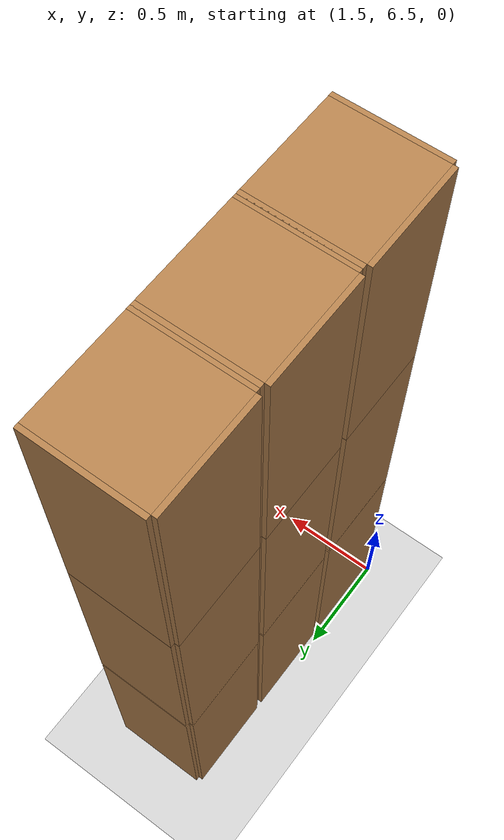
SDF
<sdf version="1.6">
 <world name="default">
  <model name="ground_plane">
   <static>1</static>
   <link name="link">
    <collision name="collision">
     <geometry><plane><normal>0 0 1</normal><size>100 100</size></plane></geometry>
     <surface>
      <contact><collide_bitmask>65535</collide_bitmask></contact>
      <friction><ode><mu>100</mu><mu2>50</mu2></ode></friction>
     </surface>
    </collision>
    <visual name="visual">
     <cast_shadows>0</cast_shadows>
     <geometry><plane><normal>0 0 1</normal><size>100 100</size></plane></geometry>
     <material>
      <script><uri>file://media/materials/scripts/gazebo.material</uri><name>Gazebo/Grey</name></script>
     </material>
    </visual>
   </link>
  </model>
  <model name="Locker18_clone_4_clone_2_clone_1_clone_clone_clone_2">
   <model name="Locker18">
    <model name="Locker3">
     <model name="cabinet">
      <static>1</static>
      <link name="cabinet_bottom_plate">
       <inertial>
        <pose>0 0 -1 0 -0 0</pose>
        <inertia><ixx>2.05</ixx><ixy>0</ixy><ixz>0</ixz><iyy>2.05</iyy><iyz>0</iyz><izz>2.05</izz></inertia>
        <mass>25</mass>
       </inertial>
       <collision name="cabinet_bottom_plate_geom">
        <pose>0 0 0.01 0 -0 0</pose>
        <geometry><box><size>0.45 0.45 0.02</size></box></geometry>
       </collision>
       <visual name="cabinet_bottom_plate_geom_visual">
        <pose>0 0 0.01 0 -0 0</pose>
        <geometry><box><size>0.45 0.45 0.02</size></box></geometry>
        <material>
         <script><uri>file://media/materials/scripts/gazebo.material</uri><name>Gazebo/Wood</name></script>
        </material>
       </visual>
       <collision name="cabinet_bottom_plate_geom_cabinet_back_plate">
        <pose>0.235 0 0.51 0 -0 0</pose>
        <geometry><box><size>0.02 0.45 1.02</size></box></geometry>
       </collision>
       <visual name="cabinet_bottom_plate_geom_cabinet_back_plate_visual">
        <pose>0.235 0 0.51 0 -0 0</pose>
        <geometry><box><size>0.02 0.45 1.02</size></box></geometry>
        <material>
         <script><uri>file://media/materials/scripts/gazebo.material</uri><name>Gazebo/Wood</name></script>
        </material>
       </visual>
       <collision name="cabinet_bottom_plate_geom_cabinet_left_plate">
        <pose>0 0.235 0.51 0 -0 0</pose>
        <geometry><box><size>0.45 0.02 1.02</size></box></geometry>
       </collision>
       <visual name="cabinet_bottom_plate_geom_cabinet_left_plate_visual">
        <pose>0 0.235 0.51 0 -0 0</pose>
        <geometry><box><size>0.45 0.02 1.02</size></box></geometry>
        <material>
         <script><uri>file://media/materials/scripts/gazebo.material</uri><name>Gazebo/Wood</name></script>
        </material>
       </visual>
       <collision name="cabinet_bottom_plate_geom_cabinet_middle_plate">
        <pose>0 0 0.51 0 -0 0</pose>
        <geometry><box><size>0.45 0.45 0.02</size></box></geometry>
       </collision>
       <visual name="cabinet_bottom_plate_geom_cabinet_middle_plate_visual">
        <pose>0 0 0.51 0 -0 0</pose>
        <geometry><box><size>0.45 0.45 0.02</size></box></geometry>
        <material>
         <script><uri>file://media/materials/scripts/gazebo.material</uri><name>Gazebo/Wood</name></script>
        </material>
       </visual>
       <collision name="cabinet_bottom_plate_geom_cabinet_right_plate">
        <pose>0 -0.235 0.51 0 -0 0</pose>
        <geometry><box><size>0.45 0.02 1.02</size></box></geometry>
       </collision>
       <visual name="cabinet_bottom_plate_geom_cabinet_right_plate_visual">
        <pose>0 -0.235 0.51 0 -0 0</pose>
        <geometry><box><size>0.45 0.02 1.02</size></box></geometry>
        <material>
         <script><uri>file://media/materials/scripts/gazebo.material</uri><name>Gazebo/Wood</name></script>
        </material>
       </visual>
       <collision name="cabinet_bottom_plate_geom_cabinet_top_plate">
        <pose>0 0 1.01 0 -0 0</pose>
        <geometry><box><size>0.45 0.45 0.02</size></box></geometry>
       </collision>
       <visual name="cabinet_bottom_plate_geom_cabinet_top_plate_visual">
        <pose>0 0 1.01 0 -0 0</pose>
        <geometry><box><size>0.45 0.45 0.02</size></box></geometry>
        <material>
         <script><uri>file://media/materials/scripts/gazebo.material</uri><name>Gazebo/Wood</name></script>
        </material>
       </visual>
      </link>
      <pose>-0.676968 1.45758 0 0 -0 0</pose>
     </model>
     <model name="cabinet_clone">
      <static>1</static>
      <link name="cabinet_bottom_plate">
       <inertial>
        <pose>0 0 -1 0 -0 0</pose>
        <inertia><ixx>2.05</ixx><ixy>0</ixy><ixz>0</ixz><iyy>2.05</iyy><iyz>0</iyz><izz>2.05</izz></inertia>
        <mass>25</mass>
       </inertial>
       <collision name="cabinet_bottom_plate_geom">
        <pose>0 0 0.01 0 -0 0</pose>
        <geometry><box><size>0.45 0.45 0.02</size></box></geometry>
       </collision>
       <visual name="cabinet_bottom_plate_geom_visual">
        <pose>0 0 0.01 0 -0 0</pose>
        <geometry><box><size>0.45 0.45 0.02</size></box></geometry>
        <material>
         <script><uri>file://media/materials/scripts/gazebo.material</uri><name>Gazebo/Wood</name></script>
        </material>
       </visual>
       <collision name="cabinet_bottom_plate_geom_cabinet_back_plate">
        <pose>0.235 0 0.51 0 -0 0</pose>
        <geometry><box><size>0.02 0.45 1.02</size></box></geometry>
       </collision>
       <visual name="cabinet_bottom_plate_geom_cabinet_back_plate_visual">
        <pose>0.235 0 0.51 0 -0 0</pose>
        <geometry><box><size>0.02 0.45 1.02</size></box></geometry>
        <material>
         <script><uri>file://media/materials/scripts/gazebo.material</uri><name>Gazebo/Wood</name></script>
        </material>
       </visual>
       <collision name="cabinet_bottom_plate_geom_cabinet_left_plate">
        <pose>0 0.235 0.51 0 -0 0</pose>
        <geometry><box><size>0.45 0.02 1.02</size></box></geometry>
       </collision>
       <visual name="cabinet_bottom_plate_geom_cabinet_left_plate_visual">
        <pose>0 0.235 0.51 0 -0 0</pose>
        <geometry><box><size>0.45 0.02 1.02</size></box></geometry>
        <material>
         <script><uri>file://media/materials/scripts/gazebo.material</uri><name>Gazebo/Wood</name></script>
        </material>
       </visual>
       <collision name="cabinet_bottom_plate_geom_cabinet_middle_plate">
        <pose>0 0 0.51 0 -0 0</pose>
        <geometry><box><size>0.45 0.45 0.02</size></box></geometry>
       </collision>
       <visual name="cabinet_bottom_plate_geom_cabinet_middle_plate_visual">
        <pose>0 0 0.51 0 -0 0</pose>
        <geometry><box><size>0.45 0.45 0.02</size></box></geometry>
        <material>
         <script><uri>file://media/materials/scripts/gazebo.material</uri><name>Gazebo/Wood</name></script>
        </material>
       </visual>
       <collision name="cabinet_bottom_plate_geom_cabinet_right_plate">
        <pose>0 -0.235 0.51 0 -0 0</pose>
        <geometry><box><size>0.45 0.02 1.02</size></box></geometry>
       </collision>
       <visual name="cabinet_bottom_plate_geom_cabinet_right_plate_visual">
        <pose>0 -0.235 0.51 0 -0 0</pose>
        <geometry><box><size>0.45 0.02 1.02</size></box></geometry>
        <material>
         <script><uri>file://media/materials/scripts/gazebo.material</uri><name>Gazebo/Wood</name></script>
        </material>
       </visual>
       <collision name="cabinet_bottom_plate_geom_cabinet_top_plate">
        <pose>0 0 1.01 0 -0 0</pose>
        <geometry><box><size>0.45 0.45 0.02</size></box></geometry>
       </collision>
       <visual name="cabinet_bottom_plate_geom_cabinet_top_plate_visual">
        <pose>0 0 1.01 0 -0 0</pose>
        <geometry><box><size>0.45 0.45 0.02</size></box></geometry>
        <material>
         <script><uri>file://media/materials/scripts/gazebo.material</uri><name>Gazebo/Wood</name></script>
        </material>
       </visual>
      </link>
      <pose>-0.676968 0.970971 0 0 -0 0</pose>
     </model>
     <model name="cabinet_clone_0">
      <static>1</static>
      <link name="cabinet_bottom_plate">
       <inertial>
        <pose>0 0 -1 0 -0 0</pose>
        <inertia><ixx>2.05</ixx><ixy>0</ixy><ixz>0</ixz><iyy>2.05</iyy><iyz>0</iyz><izz>2.05</izz></inertia>
        <mass>25</mass>
       </inertial>
       <collision name="cabinet_bottom_plate_geom">
        <pose>0 0 0.01 0 -0 0</pose>
        <geometry><box><size>0.45 0.45 0.02</size></box></geometry>
       </collision>
       <visual name="cabinet_bottom_plate_geom_visual">
        <pose>0 0 0.01 0 -0 0</pose>
        <geometry><box><size>0.45 0.45 0.02</size></box></geometry>
        <material>
         <script><uri>file://media/materials/scripts/gazebo.material</uri><name>Gazebo/Wood</name></script>
        </material>
       </visual>
       <collision name="cabinet_bottom_plate_geom_cabinet_back_plate">
        <pose>0.235 0 0.51 0 -0 0</pose>
        <geometry><box><size>0.02 0.45 1.02</size></box></geometry>
       </collision>
       <visual name="cabinet_bottom_plate_geom_cabinet_back_plate_visual">
        <pose>0.235 0 0.51 0 -0 0</pose>
        <geometry><box><size>0.02 0.45 1.02</size></box></geometry>
        <material>
         <script><uri>file://media/materials/scripts/gazebo.material</uri><name>Gazebo/Wood</name></script>
        </material>
       </visual>
       <collision name="cabinet_bottom_plate_geom_cabinet_left_plate">
        <pose>0 0.235 0.51 0 -0 0</pose>
        <geometry><box><size>0.45 0.02 1.02</size></box></geometry>
       </collision>
       <visual name="cabinet_bottom_plate_geom_cabinet_left_plate_visual">
        <pose>0 0.235 0.51 0 -0 0</pose>
        <geometry><box><size>0.45 0.02 1.02</size></box></geometry>
        <material>
         <script><uri>file://media/materials/scripts/gazebo.material</uri><name>Gazebo/Wood</name></script>
        </material>
       </visual>
       <collision name="cabinet_bottom_plate_geom_cabinet_middle_plate">
        <pose>0 0 0.51 0 -0 0</pose>
        <geometry><box><size>0.45 0.45 0.02</size></box></geometry>
       </collision>
       <visual name="cabinet_bottom_plate_geom_cabinet_middle_plate_visual">
        <pose>0 0 0.51 0 -0 0</pose>
        <geometry><box><size>0.45 0.45 0.02</size></box></geometry>
        <material>
         <script><uri>file://media/materials/scripts/gazebo.material</uri><name>Gazebo/Wood</name></script>
        </material>
       </visual>
       <collision name="cabinet_bottom_plate_geom_cabinet_right_plate">
        <pose>0 -0.235 0.51 0 -0 0</pose>
        <geometry><box><size>0.45 0.02 1.02</size></box></geometry>
       </collision>
       <visual name="cabinet_bottom_plate_geom_cabinet_right_plate_visual">
        <pose>0 -0.235 0.51 0 -0 0</pose>
        <geometry><box><size>0.45 0.02 1.02</size></box></geometry>
        <material>
         <script><uri>file://media/materials/scripts/gazebo.material</uri><name>Gazebo/Wood</name></script>
        </material>
       </visual>
       <collision name="cabinet_bottom_plate_geom_cabinet_top_plate">
        <pose>0 0 1.01 0 -0 0</pose>
        <geometry><box><size>0.45 0.45 0.02</size></box></geometry>
       </collision>
       <visual name="cabinet_bottom_plate_geom_cabinet_top_plate_visual">
        <pose>0 0 1.01 0 -0 0</pose>
        <geometry><box><size>0.45 0.45 0.02</size></box></geometry>
        <material>
         <script><uri>file://media/materials/scripts/gazebo.material</uri><name>Gazebo/Wood</name></script>
        </material>
       </visual>
      </link>
      <pose>-0.676968 0.48391 0 0 -0 0</pose>
     </model>
     <static>0</static>
     <pose>0 3e-06 -1.02763 0 -0 0</pose>
    </model>
    <model name="Locker3_clone">
     <model name="cabinet">
      <static>1</static>
      <link name="cabinet_bottom_plate">
       <inertial>
        <pose>0 0 -1 0 -0 0</pose>
        <inertia><ixx>2.05</ixx><ixy>0</ixy><ixz>0</ixz><iyy>2.05</iyy><iyz>0</iyz><izz>2.05</izz></inertia>
        <mass>25</mass>
       </inertial>
       <collision name="cabinet_bottom_plate_geom">
        <pose>0 0 0.01 0 -0 0</pose>
        <geometry><box><size>0.45 0.45 0.02</size></box></geometry>
       </collision>
       <visual name="cabinet_bottom_plate_geom_visual">
        <pose>0 0 0.01 0 -0 0</pose>
        <geometry><box><size>0.45 0.45 0.02</size></box></geometry>
        <material>
         <script><uri>file://media/materials/scripts/gazebo.material</uri><name>Gazebo/Wood</name></script>
        </material>
       </visual>
       <collision name="cabinet_bottom_plate_geom_cabinet_back_plate">
        <pose>0.235 0 0.51 0 -0 0</pose>
        <geometry><box><size>0.02 0.45 1.02</size></box></geometry>
       </collision>
       <visual name="cabinet_bottom_plate_geom_cabinet_back_plate_visual">
        <pose>0.235 0 0.51 0 -0 0</pose>
        <geometry><box><size>0.02 0.45 1.02</size></box></geometry>
        <material>
         <script><uri>file://media/materials/scripts/gazebo.material</uri><name>Gazebo/Wood</name></script>
        </material>
       </visual>
       <collision name="cabinet_bottom_plate_geom_cabinet_left_plate">
        <pose>0 0.235 0.51 0 -0 0</pose>
        <geometry><box><size>0.45 0.02 1.02</size></box></geometry>
       </collision>
       <visual name="cabinet_bottom_plate_geom_cabinet_left_plate_visual">
        <pose>0 0.235 0.51 0 -0 0</pose>
        <geometry><box><size>0.45 0.02 1.02</size></box></geometry>
        <material>
         <script><uri>file://media/materials/scripts/gazebo.material</uri><name>Gazebo/Wood</name></script>
        </material>
       </visual>
       <collision name="cabinet_bottom_plate_geom_cabinet_middle_plate">
        <pose>0 0 0.51 0 -0 0</pose>
        <geometry><box><size>0.45 0.45 0.02</size></box></geometry>
       </collision>
       <visual name="cabinet_bottom_plate_geom_cabinet_middle_plate_visual">
        <pose>0 0 0.51 0 -0 0</pose>
        <geometry><box><size>0.45 0.45 0.02</size></box></geometry>
        <material>
         <script><uri>file://media/materials/scripts/gazebo.material</uri><name>Gazebo/Wood</name></script>
        </material>
       </visual>
       <collision name="cabinet_bottom_plate_geom_cabinet_right_plate">
        <pose>0 -0.235 0.51 0 -0 0</pose>
        <geometry><box><size>0.45 0.02 1.02</size></box></geometry>
       </collision>
       <visual name="cabinet_bottom_plate_geom_cabinet_right_plate_visual">
        <pose>0 -0.235 0.51 0 -0 0</pose>
        <geometry><box><size>0.45 0.02 1.02</size></box></geometry>
        <material>
         <script><uri>file://media/materials/scripts/gazebo.material</uri><name>Gazebo/Wood</name></script>
        </material>
       </visual>
       <collision name="cabinet_bottom_plate_geom_cabinet_top_plate">
        <pose>0 0 1.01 0 -0 0</pose>
        <geometry><box><size>0.45 0.45 0.02</size></box></geometry>
       </collision>
       <visual name="cabinet_bottom_plate_geom_cabinet_top_plate_visual">
        <pose>0 0 1.01 0 -0 0</pose>
        <geometry><box><size>0.45 0.45 0.02</size></box></geometry>
        <material>
         <script><uri>file://media/materials/scripts/gazebo.material</uri><name>Gazebo/Wood</name></script>
        </material>
       </visual>
      </link>
      <pose>-0.676968 1.45758 0 0 -0 0</pose>
     </model>
     <model name="cabinet_clone">
      <static>1</static>
      <link name="cabinet_bottom_plate">
       <inertial>
        <pose>0 0 -1 0 -0 0</pose>
        <inertia><ixx>2.05</ixx><ixy>0</ixy><ixz>0</ixz><iyy>2.05</iyy><iyz>0</iyz><izz>2.05</izz></inertia>
        <mass>25</mass>
       </inertial>
       <collision name="cabinet_bottom_plate_geom">
        <pose>0 0 0.01 0 -0 0</pose>
        <geometry><box><size>0.45 0.45 0.02</size></box></geometry>
       </collision>
       <visual name="cabinet_bottom_plate_geom_visual">
        <pose>0 0 0.01 0 -0 0</pose>
        <geometry><box><size>0.45 0.45 0.02</size></box></geometry>
        <material>
         <script><uri>file://media/materials/scripts/gazebo.material</uri><name>Gazebo/Wood</name></script>
        </material>
       </visual>
       <collision name="cabinet_bottom_plate_geom_cabinet_back_plate">
        <pose>0.235 0 0.51 0 -0 0</pose>
        <geometry><box><size>0.02 0.45 1.02</size></box></geometry>
       </collision>
       <visual name="cabinet_bottom_plate_geom_cabinet_back_plate_visual">
        <pose>0.235 0 0.51 0 -0 0</pose>
        <geometry><box><size>0.02 0.45 1.02</size></box></geometry>
        <material>
         <script><uri>file://media/materials/scripts/gazebo.material</uri><name>Gazebo/Wood</name></script>
        </material>
       </visual>
       <collision name="cabinet_bottom_plate_geom_cabinet_left_plate">
        <pose>0 0.235 0.51 0 -0 0</pose>
        <geometry><box><size>0.45 0.02 1.02</size></box></geometry>
       </collision>
       <visual name="cabinet_bottom_plate_geom_cabinet_left_plate_visual">
        <pose>0 0.235 0.51 0 -0 0</pose>
        <geometry><box><size>0.45 0.02 1.02</size></box></geometry>
        <material>
         <script><uri>file://media/materials/scripts/gazebo.material</uri><name>Gazebo/Wood</name></script>
        </material>
       </visual>
       <collision name="cabinet_bottom_plate_geom_cabinet_middle_plate">
        <pose>0 0 0.51 0 -0 0</pose>
        <geometry><box><size>0.45 0.45 0.02</size></box></geometry>
       </collision>
       <visual name="cabinet_bottom_plate_geom_cabinet_middle_plate_visual">
        <pose>0 0 0.51 0 -0 0</pose>
        <geometry><box><size>0.45 0.45 0.02</size></box></geometry>
        <material>
         <script><uri>file://media/materials/scripts/gazebo.material</uri><name>Gazebo/Wood</name></script>
        </material>
       </visual>
       <collision name="cabinet_bottom_plate_geom_cabinet_right_plate">
        <pose>0 -0.235 0.51 0 -0 0</pose>
        <geometry><box><size>0.45 0.02 1.02</size></box></geometry>
       </collision>
       <visual name="cabinet_bottom_plate_geom_cabinet_right_plate_visual">
        <pose>0 -0.235 0.51 0 -0 0</pose>
        <geometry><box><size>0.45 0.02 1.02</size></box></geometry>
        <material>
         <script><uri>file://media/materials/scripts/gazebo.material</uri><name>Gazebo/Wood</name></script>
        </material>
       </visual>
       <collision name="cabinet_bottom_plate_geom_cabinet_top_plate">
        <pose>0 0 1.01 0 -0 0</pose>
        <geometry><box><size>0.45 0.45 0.02</size></box></geometry>
       </collision>
       <visual name="cabinet_bottom_plate_geom_cabinet_top_plate_visual">
        <pose>0 0 1.01 0 -0 0</pose>
        <geometry><box><size>0.45 0.45 0.02</size></box></geometry>
        <material>
         <script><uri>file://media/materials/scripts/gazebo.material</uri><name>Gazebo/Wood</name></script>
        </material>
       </visual>
      </link>
      <pose>-0.676968 0.970971 0 0 -0 0</pose>
     </model>
     <model name="cabinet_clone_0">
      <static>1</static>
      <link name="cabinet_bottom_plate">
       <inertial>
        <pose>0 0 -1 0 -0 0</pose>
        <inertia><ixx>2.05</ixx><ixy>0</ixy><ixz>0</ixz><iyy>2.05</iyy><iyz>0</iyz><izz>2.05</izz></inertia>
        <mass>25</mass>
       </inertial>
       <collision name="cabinet_bottom_plate_geom">
        <pose>0 0 0.01 0 -0 0</pose>
        <geometry><box><size>0.45 0.45 0.02</size></box></geometry>
       </collision>
       <visual name="cabinet_bottom_plate_geom_visual">
        <pose>0 0 0.01 0 -0 0</pose>
        <geometry><box><size>0.45 0.45 0.02</size></box></geometry>
        <material>
         <script><uri>file://media/materials/scripts/gazebo.material</uri><name>Gazebo/Wood</name></script>
        </material>
       </visual>
       <collision name="cabinet_bottom_plate_geom_cabinet_back_plate">
        <pose>0.235 0 0.51 0 -0 0</pose>
        <geometry><box><size>0.02 0.45 1.02</size></box></geometry>
       </collision>
       <visual name="cabinet_bottom_plate_geom_cabinet_back_plate_visual">
        <pose>0.235 0 0.51 0 -0 0</pose>
        <geometry><box><size>0.02 0.45 1.02</size></box></geometry>
        <material>
         <script><uri>file://media/materials/scripts/gazebo.material</uri><name>Gazebo/Wood</name></script>
        </material>
       </visual>
       <collision name="cabinet_bottom_plate_geom_cabinet_left_plate">
        <pose>0 0.235 0.51 0 -0 0</pose>
        <geometry><box><size>0.45 0.02 1.02</size></box></geometry>
       </collision>
       <visual name="cabinet_bottom_plate_geom_cabinet_left_plate_visual">
        <pose>0 0.235 0.51 0 -0 0</pose>
        <geometry><box><size>0.45 0.02 1.02</size></box></geometry>
        <material>
         <script><uri>file://media/materials/scripts/gazebo.material</uri><name>Gazebo/Wood</name></script>
        </material>
       </visual>
       <collision name="cabinet_bottom_plate_geom_cabinet_middle_plate">
        <pose>0 0 0.51 0 -0 0</pose>
        <geometry><box><size>0.45 0.45 0.02</size></box></geometry>
       </collision>
       <visual name="cabinet_bottom_plate_geom_cabinet_middle_plate_visual">
        <pose>0 0 0.51 0 -0 0</pose>
        <geometry><box><size>0.45 0.45 0.02</size></box></geometry>
        <material>
         <script><uri>file://media/materials/scripts/gazebo.material</uri><name>Gazebo/Wood</name></script>
        </material>
       </visual>
       <collision name="cabinet_bottom_plate_geom_cabinet_right_plate">
        <pose>0 -0.235 0.51 0 -0 0</pose>
        <geometry><box><size>0.45 0.02 1.02</size></box></geometry>
       </collision>
       <visual name="cabinet_bottom_plate_geom_cabinet_right_plate_visual">
        <pose>0 -0.235 0.51 0 -0 0</pose>
        <geometry><box><size>0.45 0.02 1.02</size></box></geometry>
        <material>
         <script><uri>file://media/materials/scripts/gazebo.material</uri><name>Gazebo/Wood</name></script>
        </material>
       </visual>
       <collision name="cabinet_bottom_plate_geom_cabinet_top_plate">
        <pose>0 0 1.01 0 -0 0</pose>
        <geometry><box><size>0.45 0.45 0.02</size></box></geometry>
       </collision>
       <visual name="cabinet_bottom_plate_geom_cabinet_top_plate_visual">
        <pose>0 0 1.01 0 -0 0</pose>
        <geometry><box><size>0.45 0.45 0.02</size></box></geometry>
        <material>
         <script><uri>file://media/materials/scripts/gazebo.material</uri><name>Gazebo/Wood</name></script>
        </material>
       </visual>
      </link>
      <pose>-0.676968 0.48391 0 0 -0 0</pose>
     </model>
     <static>0</static>
     <pose>0 3e-06 0.003717 0 -0 0</pose>
    </model>
    <model name="Locker3_clone_clone">
     <model name="cabinet">
      <static>1</static>
      <link name="cabinet_bottom_plate">
       <inertial>
        <pose>0 0 -1 0 -0 0</pose>
        <inertia><ixx>2.05</ixx><ixy>0</ixy><ixz>0</ixz><iyy>2.05</iyy><iyz>0</iyz><izz>2.05</izz></inertia>
        <mass>25</mass>
       </inertial>
       <collision name="cabinet_bottom_plate_geom">
        <pose>0 0 0.01 0 -0 0</pose>
        <geometry><box><size>0.45 0.45 0.02</size></box></geometry>
       </collision>
       <visual name="cabinet_bottom_plate_geom_visual">
        <pose>0 0 0.01 0 -0 0</pose>
        <geometry><box><size>0.45 0.45 0.02</size></box></geometry>
        <material>
         <script><uri>file://media/materials/scripts/gazebo.material</uri><name>Gazebo/Wood</name></script>
        </material>
       </visual>
       <collision name="cabinet_bottom_plate_geom_cabinet_back_plate">
        <pose>0.235 0 0.51 0 -0 0</pose>
        <geometry><box><size>0.02 0.45 1.02</size></box></geometry>
       </collision>
       <visual name="cabinet_bottom_plate_geom_cabinet_back_plate_visual">
        <pose>0.235 0 0.51 0 -0 0</pose>
        <geometry><box><size>0.02 0.45 1.02</size></box></geometry>
        <material>
         <script><uri>file://media/materials/scripts/gazebo.material</uri><name>Gazebo/Wood</name></script>
        </material>
       </visual>
       <collision name="cabinet_bottom_plate_geom_cabinet_left_plate">
        <pose>0 0.235 0.51 0 -0 0</pose>
        <geometry><box><size>0.45 0.02 1.02</size></box></geometry>
       </collision>
       <visual name="cabinet_bottom_plate_geom_cabinet_left_plate_visual">
        <pose>0 0.235 0.51 0 -0 0</pose>
        <geometry><box><size>0.45 0.02 1.02</size></box></geometry>
        <material>
         <script><uri>file://media/materials/scripts/gazebo.material</uri><name>Gazebo/Wood</name></script>
        </material>
       </visual>
       <collision name="cabinet_bottom_plate_geom_cabinet_middle_plate">
        <pose>0 0 0.51 0 -0 0</pose>
        <geometry><box><size>0.45 0.45 0.02</size></box></geometry>
       </collision>
       <visual name="cabinet_bottom_plate_geom_cabinet_middle_plate_visual">
        <pose>0 0 0.51 0 -0 0</pose>
        <geometry><box><size>0.45 0.45 0.02</size></box></geometry>
        <material>
         <script><uri>file://media/materials/scripts/gazebo.material</uri><name>Gazebo/Wood</name></script>
        </material>
       </visual>
       <collision name="cabinet_bottom_plate_geom_cabinet_right_plate">
        <pose>0 -0.235 0.51 0 -0 0</pose>
        <geometry><box><size>0.45 0.02 1.02</size></box></geometry>
       </collision>
       <visual name="cabinet_bottom_plate_geom_cabinet_right_plate_visual">
        <pose>0 -0.235 0.51 0 -0 0</pose>
        <geometry><box><size>0.45 0.02 1.02</size></box></geometry>
        <material>
         <script><uri>file://media/materials/scripts/gazebo.material</uri><name>Gazebo/Wood</name></script>
        </material>
       </visual>
       <collision name="cabinet_bottom_plate_geom_cabinet_top_plate">
        <pose>0 0 1.01 0 -0 0</pose>
        <geometry><box><size>0.45 0.45 0.02</size></box></geometry>
       </collision>
       <visual name="cabinet_bottom_plate_geom_cabinet_top_plate_visual">
        <pose>0 0 1.01 0 -0 0</pose>
        <geometry><box><size>0.45 0.45 0.02</size></box></geometry>
        <material>
         <script><uri>file://media/materials/scripts/gazebo.material</uri><name>Gazebo/Wood</name></script>
        </material>
       </visual>
      </link>
      <pose>-0.676968 1.45758 0 0 -0 0</pose>
     </model>
     <model name="cabinet_clone">
      <static>1</static>
      <link name="cabinet_bottom_plate">
       <inertial>
        <pose>0 0 -1 0 -0 0</pose>
        <inertia><ixx>2.05</ixx><ixy>0</ixy><ixz>0</ixz><iyy>2.05</iyy><iyz>0</iyz><izz>2.05</izz></inertia>
        <mass>25</mass>
       </inertial>
       <collision name="cabinet_bottom_plate_geom">
        <pose>0 0 0.01 0 -0 0</pose>
        <geometry><box><size>0.45 0.45 0.02</size></box></geometry>
       </collision>
       <visual name="cabinet_bottom_plate_geom_visual">
        <pose>0 0 0.01 0 -0 0</pose>
        <geometry><box><size>0.45 0.45 0.02</size></box></geometry>
        <material>
         <script><uri>file://media/materials/scripts/gazebo.material</uri><name>Gazebo/Wood</name></script>
        </material>
       </visual>
       <collision name="cabinet_bottom_plate_geom_cabinet_back_plate">
        <pose>0.235 0 0.51 0 -0 0</pose>
        <geometry><box><size>0.02 0.45 1.02</size></box></geometry>
       </collision>
       <visual name="cabinet_bottom_plate_geom_cabinet_back_plate_visual">
        <pose>0.235 0 0.51 0 -0 0</pose>
        <geometry><box><size>0.02 0.45 1.02</size></box></geometry>
        <material>
         <script><uri>file://media/materials/scripts/gazebo.material</uri><name>Gazebo/Wood</name></script>
        </material>
       </visual>
       <collision name="cabinet_bottom_plate_geom_cabinet_left_plate">
        <pose>0 0.235 0.51 0 -0 0</pose>
        <geometry><box><size>0.45 0.02 1.02</size></box></geometry>
       </collision>
       <visual name="cabinet_bottom_plate_geom_cabinet_left_plate_visual">
        <pose>0 0.235 0.51 0 -0 0</pose>
        <geometry><box><size>0.45 0.02 1.02</size></box></geometry>
        <material>
         <script><uri>file://media/materials/scripts/gazebo.material</uri><name>Gazebo/Wood</name></script>
        </material>
       </visual>
       <collision name="cabinet_bottom_plate_geom_cabinet_middle_plate">
        <pose>0 0 0.51 0 -0 0</pose>
        <geometry><box><size>0.45 0.45 0.02</size></box></geometry>
       </collision>
       <visual name="cabinet_bottom_plate_geom_cabinet_middle_plate_visual">
        <pose>0 0 0.51 0 -0 0</pose>
        <geometry><box><size>0.45 0.45 0.02</size></box></geometry>
        <material>
         <script><uri>file://media/materials/scripts/gazebo.material</uri><name>Gazebo/Wood</name></script>
        </material>
       </visual>
       <collision name="cabinet_bottom_plate_geom_cabinet_right_plate">
        <pose>0 -0.235 0.51 0 -0 0</pose>
        <geometry><box><size>0.45 0.02 1.02</size></box></geometry>
       </collision>
       <visual name="cabinet_bottom_plate_geom_cabinet_right_plate_visual">
        <pose>0 -0.235 0.51 0 -0 0</pose>
        <geometry><box><size>0.45 0.02 1.02</size></box></geometry>
        <material>
         <script><uri>file://media/materials/scripts/gazebo.material</uri><name>Gazebo/Wood</name></script>
        </material>
       </visual>
       <collision name="cabinet_bottom_plate_geom_cabinet_top_plate">
        <pose>0 0 1.01 0 -0 0</pose>
        <geometry><box><size>0.45 0.45 0.02</size></box></geometry>
       </collision>
       <visual name="cabinet_bottom_plate_geom_cabinet_top_plate_visual">
        <pose>0 0 1.01 0 -0 0</pose>
        <geometry><box><size>0.45 0.45 0.02</size></box></geometry>
        <material>
         <script><uri>file://media/materials/scripts/gazebo.material</uri><name>Gazebo/Wood</name></script>
        </material>
       </visual>
      </link>
      <pose>-0.676968 0.970971 0 0 -0 0</pose>
     </model>
     <model name="cabinet_clone_0">
      <static>1</static>
      <link name="cabinet_bottom_plate">
       <inertial>
        <pose>0 0 -1 0 -0 0</pose>
        <inertia><ixx>2.05</ixx><ixy>0</ixy><ixz>0</ixz><iyy>2.05</iyy><iyz>0</iyz><izz>2.05</izz></inertia>
        <mass>25</mass>
       </inertial>
       <collision name="cabinet_bottom_plate_geom">
        <pose>0 0 0.01 0 -0 0</pose>
        <geometry><box><size>0.45 0.45 0.02</size></box></geometry>
       </collision>
       <visual name="cabinet_bottom_plate_geom_visual">
        <pose>0 0 0.01 0 -0 0</pose>
        <geometry><box><size>0.45 0.45 0.02</size></box></geometry>
        <material>
         <script><uri>file://media/materials/scripts/gazebo.material</uri><name>Gazebo/Wood</name></script>
        </material>
       </visual>
       <collision name="cabinet_bottom_plate_geom_cabinet_back_plate">
        <pose>0.235 0 0.51 0 -0 0</pose>
        <geometry><box><size>0.02 0.45 1.02</size></box></geometry>
       </collision>
       <visual name="cabinet_bottom_plate_geom_cabinet_back_plate_visual">
        <pose>0.235 0 0.51 0 -0 0</pose>
        <geometry><box><size>0.02 0.45 1.02</size></box></geometry>
        <material>
         <script><uri>file://media/materials/scripts/gazebo.material</uri><name>Gazebo/Wood</name></script>
        </material>
       </visual>
       <collision name="cabinet_bottom_plate_geom_cabinet_left_plate">
        <pose>0 0.235 0.51 0 -0 0</pose>
        <geometry><box><size>0.45 0.02 1.02</size></box></geometry>
       </collision>
       <visual name="cabinet_bottom_plate_geom_cabinet_left_plate_visual">
        <pose>0 0.235 0.51 0 -0 0</pose>
        <geometry><box><size>0.45 0.02 1.02</size></box></geometry>
        <material>
         <script><uri>file://media/materials/scripts/gazebo.material</uri><name>Gazebo/Wood</name></script>
        </material>
       </visual>
       <collision name="cabinet_bottom_plate_geom_cabinet_middle_plate">
        <pose>0 0 0.51 0 -0 0</pose>
        <geometry><box><size>0.45 0.45 0.02</size></box></geometry>
       </collision>
       <visual name="cabinet_bottom_plate_geom_cabinet_middle_plate_visual">
        <pose>0 0 0.51 0 -0 0</pose>
        <geometry><box><size>0.45 0.45 0.02</size></box></geometry>
        <material>
         <script><uri>file://media/materials/scripts/gazebo.material</uri><name>Gazebo/Wood</name></script>
        </material>
       </visual>
       <collision name="cabinet_bottom_plate_geom_cabinet_right_plate">
        <pose>0 -0.235 0.51 0 -0 0</pose>
        <geometry><box><size>0.45 0.02 1.02</size></box></geometry>
       </collision>
       <visual name="cabinet_bottom_plate_geom_cabinet_right_plate_visual">
        <pose>0 -0.235 0.51 0 -0 0</pose>
        <geometry><box><size>0.45 0.02 1.02</size></box></geometry>
        <material>
         <script><uri>file://media/materials/scripts/gazebo.material</uri><name>Gazebo/Wood</name></script>
        </material>
       </visual>
       <collision name="cabinet_bottom_plate_geom_cabinet_top_plate">
        <pose>0 0 1.01 0 -0 0</pose>
        <geometry><box><size>0.45 0.45 0.02</size></box></geometry>
       </collision>
       <visual name="cabinet_bottom_plate_geom_cabinet_top_plate_visual">
        <pose>0 0 1.01 0 -0 0</pose>
        <geometry><box><size>0.45 0.45 0.02</size></box></geometry>
        <material>
         <script><uri>file://media/materials/scripts/gazebo.material</uri><name>Gazebo/Wood</name></script>
        </material>
       </visual>
      </link>
      <pose>-0.676968 0.48391 0 0 -0 0</pose>
     </model>
     <static>0</static>
     <pose>0 3e-06 1.02391 0 -0 0</pose>
    </model>
    <static>0</static>
    <pose>-0 4e-06 4e-06 0 -0 0</pose>
   </model>
   <static>0</static>
   <pose>1.08178 8.18855 1.08672 0 -0 3.14119</pose>
  </model>
 </world>
</sdf>
